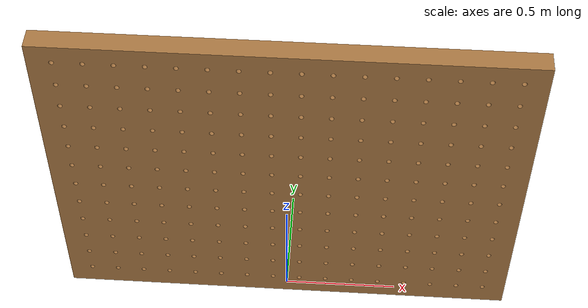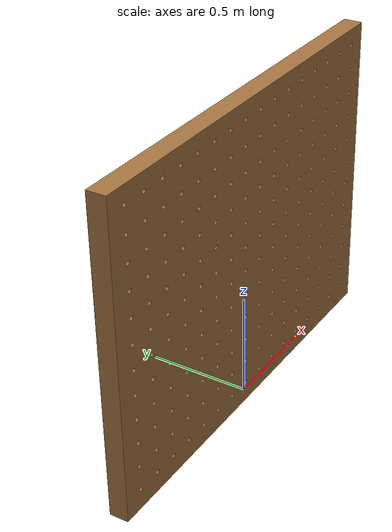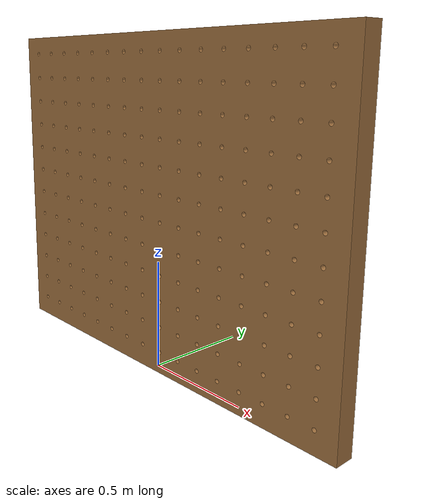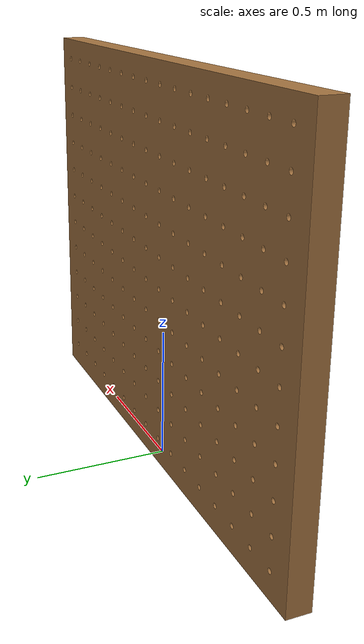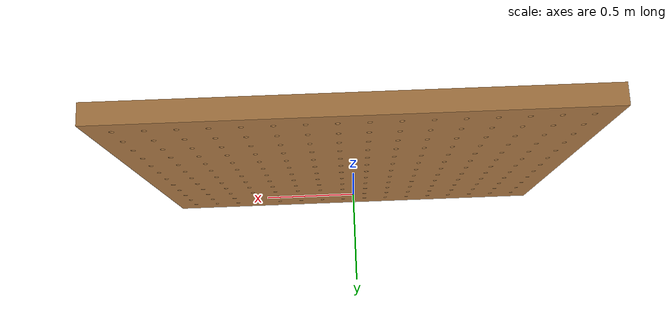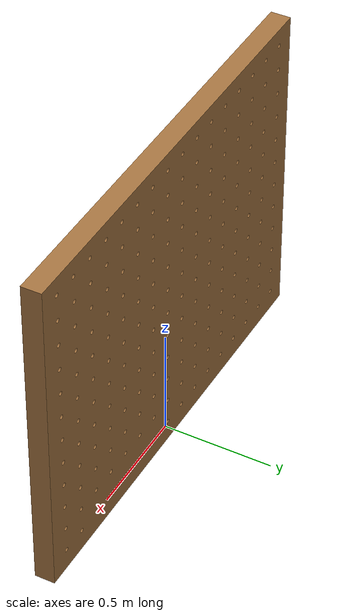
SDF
<?xml version="1.0"?><sdf version="1.6"><model name="pegboard"><static>true</static><link name="link"><visual name="board"><geometry><mesh><uri>model://pegboard/meshes/pegboard.stl</uri></mesh></geometry><material><ambient>0.64 0.45 0.25 1</ambient><diffuse>0.64 0.45 0.25 1</diffuse><specular>0.08 0.08 0.08 1</specular></material></visual><collision name="board"><pose>0 0 0.75 0 0 0</pose><geometry><box><size>2.0 0.05 1.5</size></box></geometry></collision></link></model></sdf>
